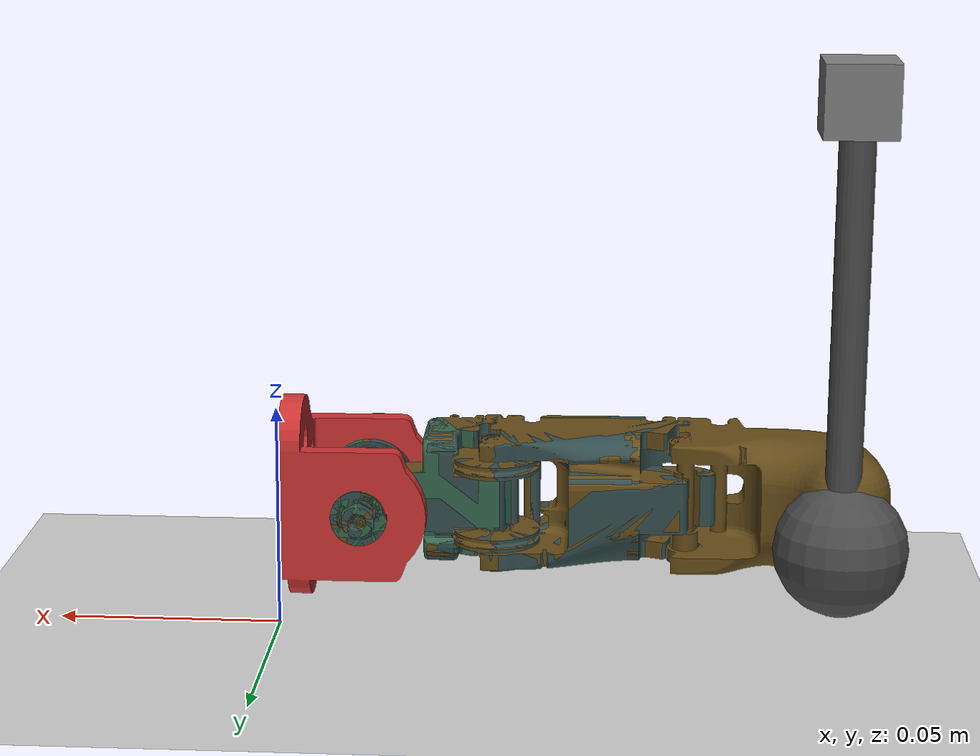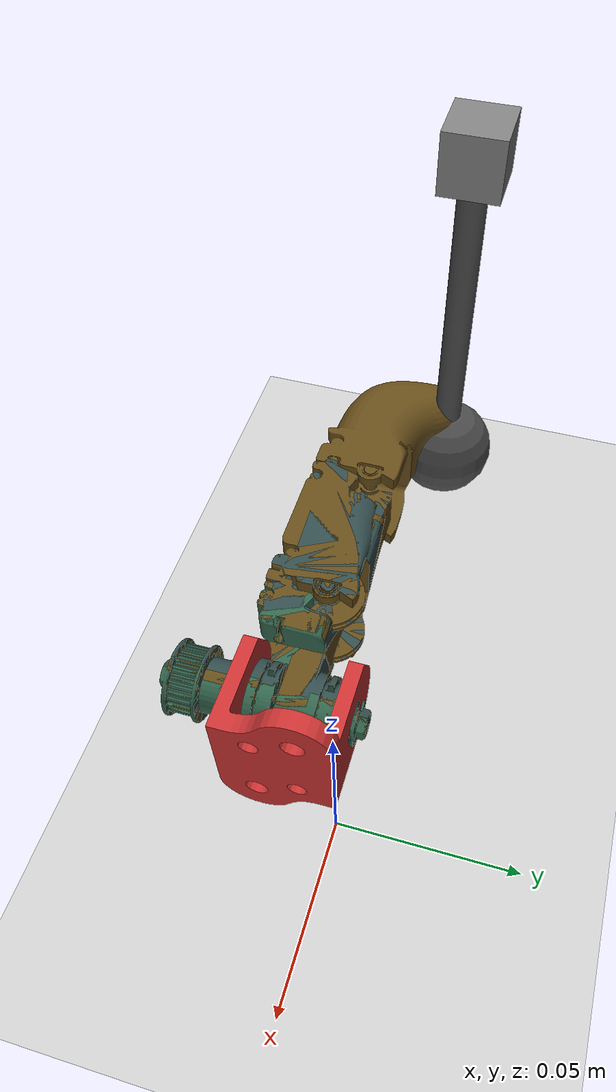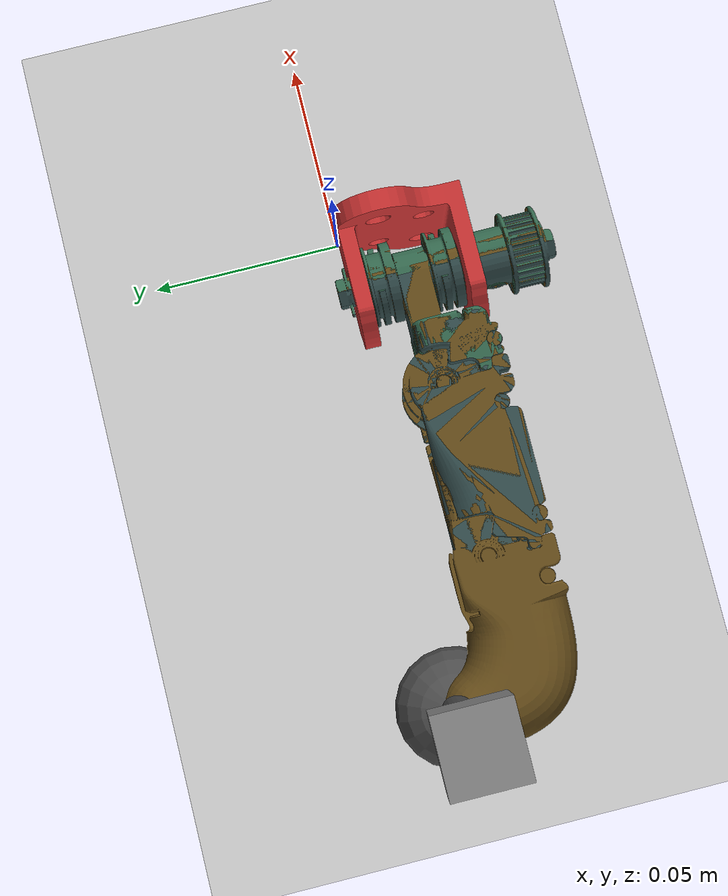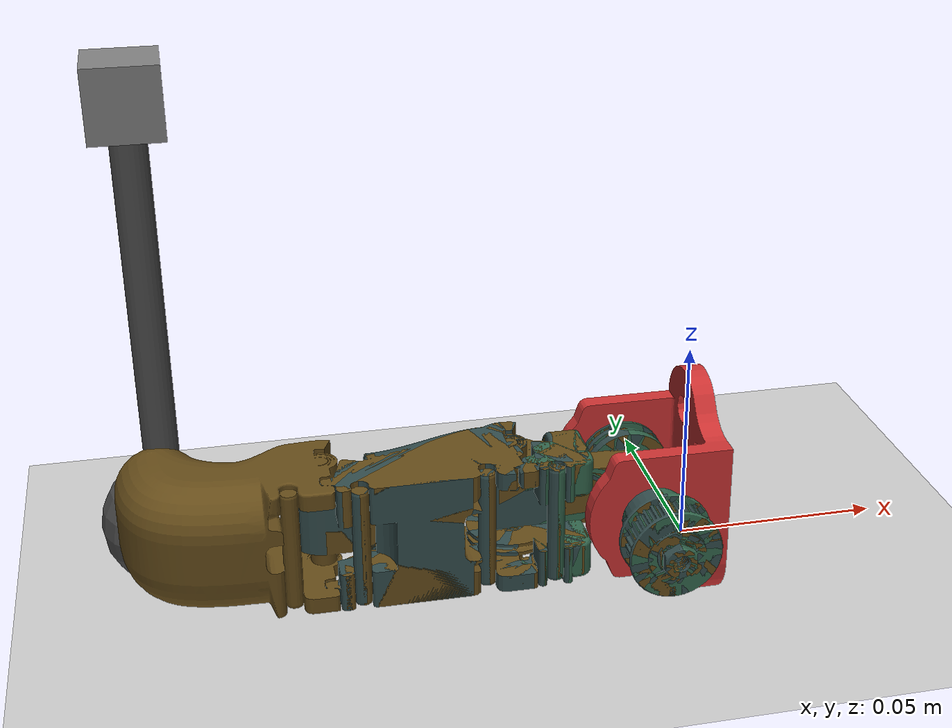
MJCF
<mujoco model="urdf_exports2">
  <compiler angle="radian"/>
  <option gravity="0.0 0.0 -9.81"/>

  <asset>
    <!--Finger assets-->
    <material name="base_mat"  rgba="0.8 0.2 0.2 1" emission="0.3"/>   <!-- red -->
    <material name="splay_mat" rgba="0.2 0.4 0.3 1" emission="0.3"/>   <!-- blue -->
    <material name="mcp_mat"   rgba="0.2 0.3 0.3 1" emission="0.3"/>   <!-- green -->
    <material name="pip_mat"   rgba="0.4 0.3 0.1 1" emission="0.3"/>
    <mesh name="base_link" content_type="model/stl" file="../meshes/base_link.STL"/>
    <mesh name="splay_link" content_type="model/stl" file="../meshes/splay_link.STL"/>
    <mesh name="mcp_link" content_type="model/stl" file="../meshes/mcp_link.STL"/>
    <mesh name="pip_link" content_type="model/stl" file="../meshes/pip_link.STL"/>
    <!--Ball pendulum asset-->
    <material name="rod_mat" rgba="0.3 0.3 0.3 1" emission="0.3"/>
    <material name="ball_mat" rgba="0.3 0.3 0.3 1" emission="0.3"/>
  </asset>

  <worldbody>
    <light pos="0 0 1.5" dir="0 0 -1" diffuse="1 1 1" specular="0.3 0.3 0.3" directional="true"/>
    <geom name="floor" type="plane" size="1 1 0.1" rgba="0.8 0.8 0.8 0.7"/>

    <!-- Add ball setup -0.225 -->
    <body name="pendulum_support" pos = "-0.12476 0.0 0.12">
      <geom type="box" size="0.008 0.008 0.008" rgba="0.5 0.5 0.5 1"/>

      <body name="pendulum_rod" pos="0 0 0">
        <joint name="pendulum_joint" type="hinge" axis="1 0 0" pos="0 0 0" damping="0.1"/>
        <inertial pos="0 0 -0.05" mass="0.5" diaginertia="1e-3 1e-3 1e-3"/>
        <geom type="cylinder" size="0.004 0.05" pos ="0 0 -0.05" material="rod_mat"/>

        <body name="ball" pos="0 0 -0.1">
          <inertial pos="0 0 0" mass="0.05" diaginertia="1e-3 1e-3 1e-3"/>
          <geom name="ball_geom" type="sphere" size="0.015" material="ball_mat"/>
        </body>

      </body>
    </body>

    <body name="base_link" pos="0 0 0.01" euler="1.57 0 1.57">
      <inertial pos="0 0 0" mass="0.1" diaginertia="1e-4 1e-4 1e-4"/>
      <geom type="mesh" material="base_mat" mesh="base_link"/>

      <body name="splay_link" pos="0.01504 0.018 0.016">
        <inertial pos="-3.6026e-05 0.0074618 0.0080911" quat="0.540632 -0.194088 0.25543 0.77769" mass="0.015542" diaginertia="1.41539e-06 1.4041e-06 1.2375e-06"/>
        <joint name="splay_joint" pos="0 0 0" axis="0 0 1" range="-0.35 0.35" damping="0.5" stiffness="2.0"/>
        <geom type="mesh" material="splay_mat" mesh="splay_link"/>

        <body name="mcp_link" pos="0.00015675 0.029856 0">
          <inertial pos="-4.0155e-05 0.019564 0.004554" quat="0.51097 0.473652 -0.492558 0.521488" mass="0.022212" diaginertia="3.60499e-06 2.80936e-06 2.37004e-06"/>
          <joint name="mcp_joint" pos="0 0 0" axis="-1 0 0" range="-1.57 1.57" actuatorfrcrange="-1 1" damping="0.5"/>
          <geom type="mesh" material="mcp_mat" mesh="mcp_link"/>

          <body name="pip_link" pos="0.00022576 0.042999 0">
            <inertial pos="9.3176e-05 0.02496 5.2699e-05" quat="0.627101 0.32874 -0.334425 0.62196" mass="0.026546" diaginertia="5.11105e-06 4.55235e-06 3.1275e-06"/>
            <joint name="pip_joint" pos="0 0 0" axis="-1 0 0" range="-1.57 1.57" actuatorfrcrange="-1 1" damping="0.5"/>
            <geom name="pip_geom" type="mesh" material="pip_mat" mesh="pip_link"/>
          </body>
        </body>
      </body>
    </body>
  </worldbody>
  <!-- Set initial Positions -->
  <keyframe>
    <key name="start" qpos="1.5 0 0 0"/>
  </keyframe>
  <!-- Adding motors (actuators)-->
  <actuator>
    <position name="splay_motor" joint="splay_joint" ctrlrange="-0.35 0.35" kp="10" kv="1.25"/>
    <motor name="mcp_motor"   joint="mcp_joint"   ctrlrange="-2 2" ctrllimited="true"/>
    <motor name="pip_motor"   joint="pip_joint"   ctrlrange="-2 2" ctrllimited="true"/>
  </actuator>

</mujoco>
